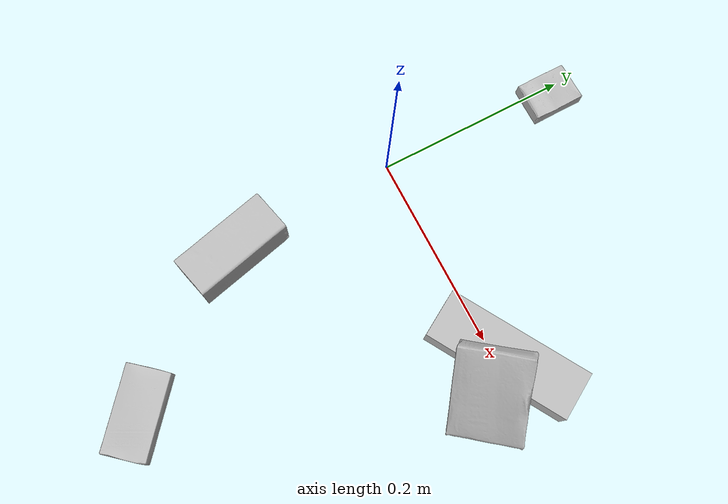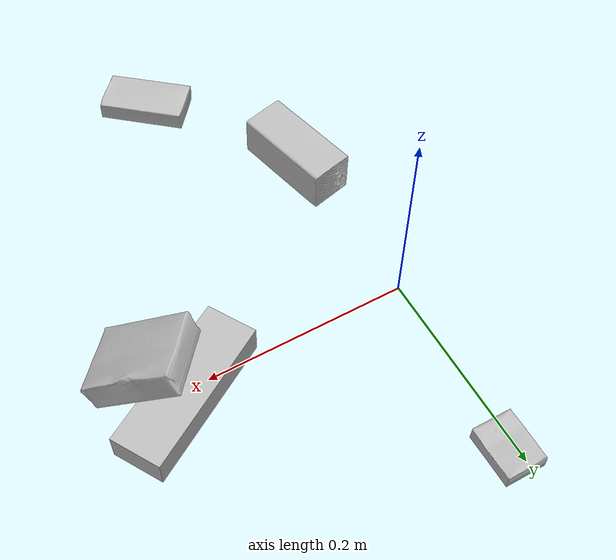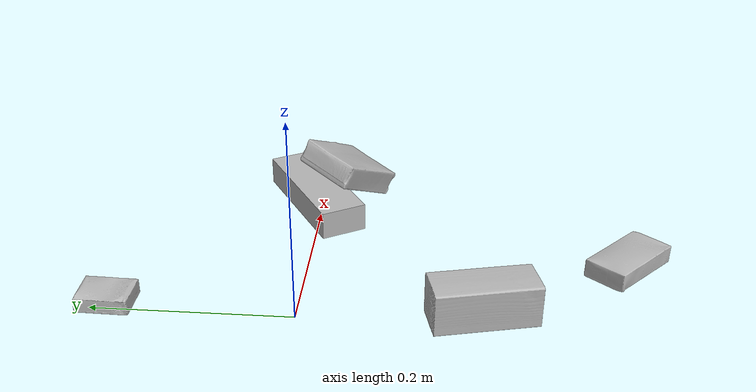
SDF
<sdf version="1.4">
  <world name="default">
    <light name="light1" type="point">
      <pose>0 0 1 0 0 0</pose>
      <diffuse>3 3 3 1</diffuse>
      <specular>3 3 3 1</specular>
    </light>
    <light name="light2" type="point">
      <pose>0 0.5 2 0 0 0</pose>
      <diffuse>1 1 1 1</diffuse>
      <specular>1 1 1 1</specular>
    </light>
    <light name="light3" type="point">
      <pose>0 0.5 2 0 0 0</pose>
      <diffuse>3 3 3 1</diffuse>
      <specular>3 3 3 1</specular>
    </light>
    <scene>
      <ambient>0.7 0.7 0.7</ambient>
    </scene>
    <model name="box1">
      <link name="link_box1">
        <collision name="default">
          <geometry>
            <mesh>
              <uri>model://sugar_box/collision_meshes/collision.obj</uri>
              <scale>0.5 0.5 0.5</scale>
            </mesh>
          </geometry>
          <surface>
            <friction>
              <ode>
                <mu>0.5</mu>
                <mu2>0.5</mu2>
              </ode>
            </friction>
          <contact>
        <ode>
            <max_vel>0</max_vel>
            <min_depth>0.0001</min_depth>
            <kp>1e8</kp>
        </ode>
    </contact></surface>
        </collision>
        <visual name="default">
          <geometry>
            <mesh>
              <uri>model://sugar_box/visual_meshes/visual.dae</uri>
              <scale>0.5 0.5 0.5</scale>
            </mesh>
          </geometry>
        </visual>
        <inertial>
          <mass>0.07249404489994049</mass>
          <pose>0.0005171863012947142 1.924554817378521e-05 -0.00018182402709499002 -0.00040462618385709627 0.0010506635220579009 0.0026153790218148127</pose>
          <inertia>
            <ixx>1.5100456e-05</ixx>
            <iyy>4.8807786e-05</iyy>
            <izz>5.842874e-05</izz>
            <ixy>0</ixy>
            <ixz>0</ixz>
            <iyz>0</iyz>
          </inertia>
        </inertial>
      </link>
      <pose>0.11030242592096329 -0.3258666396141052 0.011399302631616592 0.000775613953289829 -0.023433339482237952 2.4184817237787444</pose>
    </model>
    <model name="box2">
      <link name="link_box2">
        <collision name="default">
          <geometry>
            <mesh>
              <uri>model://cracker_box/collision_meshes/collision.obj</uri>
              <scale>0.25 0.25 0.25</scale>
            </mesh>
          </geometry>
          <surface>
            <friction>
              <ode>
                <mu>0.5</mu>
                <mu2>0.5</mu2>
              </ode>
            </friction>
          <contact>
        <ode>
            <max_vel>0</max_vel>
            <min_depth>0.0001</min_depth>
            <kp>1e8</kp>
        </ode>
    </contact></surface>
        </collision>
        <visual name="default">
          <geometry>
            <mesh>
              <uri>model://cracker_box/visual_meshes/visual.dae</uri>
              <scale>0.25 0.25 0.25</scale>
            </mesh>
          </geometry>
        </visual>
        <inertial>
          <mass>0.019660919904708862</mass>
          <pose>0.00023660410079173744 6.358561222441494e-05 -0.0004257383698131889 -0.00031620756431779875 -0.011106489600602764 0.0025467940703044144</pose>
          <inertia>
            <ixx>3.125538e-06</ixx>
            <iyy>5.1608768e-06</iyy>
            <izz>7.365045e-06</izz>
            <ixy>0</ixy>
            <ixz>0</ixz>
            <iyz>0</iyz>
          </inertia>
        </inertial>
      </link>
      <pose>0.009354876354336739 0.1844339221715927 0.009096026420593262 -0.014050497974622074 -0.005016573747951504 1.5676561553248445</pose>
    </model>
    <model name="box3">
      <link name="link_box3">
        <collision name="default">
          <geometry>
            <mesh>
              <uri>model://wood_block/collision_meshes/collision.obj</uri>
              <scale>0.5 0.5 0.5</scale>
            </mesh>
          </geometry>
          <surface>
            <friction>
              <ode>
                <mu>0.5</mu>
                <mu2>0.5</mu2>
              </ode>
            </friction>
          <contact>
        <ode>
            <max_vel>0</max_vel>
            <min_depth>0.0001</min_depth>
            <kp>1e8</kp>
        </ode>
    </contact></surface>
        </collision>
        <visual name="default">
          <geometry>
            <mesh>
              <uri>model://wood_block/visual_meshes/visual.dae</uri>
              <scale>0.5 0.5 0.5</scale>
            </mesh>
          </geometry>
        </visual>
        <inertial>
          <mass>0.22331082820892334</mass>
          <pose>-2.9066577553749084e-06 -0.000285404734313488 0.00013204292918089777 -0.0522110088927385 -0.005192696049127085 -0.006861379582621758</pose>
          <inertia>
            <ixx>7.470592e-05</ixx>
            <iyy>0.00023599603</iyy>
            <izz>0.0002351133</izz>
            <ixy>0</ixy>
            <ixz>0</ixz>
            <iyz>0</iyz>
          </inertia>
        </inertial>
      </link>
      <pose>0.010995619930326939 -0.17641915380954742 0.022629257291555405 -0.00520849102598366 0.0057187324237368 1.8073511659067243</pose>
    </model>
    <model name="box4">
      <link name="link_box4">
        <collision name="default">
          <geometry>
            <mesh>
              <uri>model://jenga/collision_meshes/collision.obj</uri>
              <scale>1.0 1.0 1.0</scale>
            </mesh>
          </geometry>
          <surface>
            <friction>
              <ode>
                <mu>0.5</mu>
                <mu2>0.5</mu2>
              </ode>
            </friction>
          <contact>
        <ode>
            <max_vel>0</max_vel>
            <min_depth>0.0001</min_depth>
            <kp>1e8</kp>
        </ode>
    </contact></surface>
        </collision>
        <visual name="default">
          <geometry>
            <mesh>
              <uri>model://jenga/visual_meshes/visual.dae</uri>
              <scale>1.0 1.0 1.0</scale>
            </mesh>
          </geometry>
        </visual>
        <inertial>
          <mass>0.1217927634716034</mass>
          <pose>-2.502855807051674e-07 -0.00010250010382151231 -4.0923401684267446e-05 0.0 -7.34215461761844e-07 0.0</pose>
          <inertia>
            <ixx>3.370301e-05</ixx>
            <iyy>0.00022837071</iyy>
            <izz>0.00024380515</izz>
            <ixy>0</ixy>
            <ixz>0</ixz>
            <iyz>0</iyz>
          </inertia>
        </inertial>
      </link>
      <pose>0.22373707592487335 0.007946479134261608 0.01500006765127182 6.9328132057411744e-06 1.5595346918780025e-08 0.5345208796865871</pose>
    </model>
    <model name="box5">
      <link name="link_box5">
        <collision name="default">
          <geometry>
            <mesh>
              <uri>model://gelatin_box/collision_meshes/collision.obj</uri>
              <scale>1.0 1.0 1.0</scale>
            </mesh>
          </geometry>
          <surface>
            <friction>
              <ode>
                <mu>0.5</mu>
                <mu2>0.5</mu2>
              </ode>
            </friction>
          <contact>
        <ode>
            <max_vel>0</max_vel>
            <min_depth>0.0001</min_depth>
            <kp>1e8</kp>
        </ode>
    </contact></surface>
        </collision>
        <visual name="default">
          <geometry>
            <mesh>
              <uri>model://gelatin_box/visual_meshes/visual.dae</uri>
              <scale>1.0 1.0 1.0</scale>
            </mesh>
          </geometry>
        </visual>
        <inertial>
          <mass>0.09479870647192001</mass>
          <pose>0.0004319618456065655 0.00011156871914863586 -0.0003640321083366871 -0.0010503720924044775 -0.0047558191559584585 0.01644055760930107</pose>
          <inertia>
            <ixx>6.6920154e-05</ixx>
            <iyy>4.780071e-05</iyy>
            <izz>0.00010186739</izz>
            <ixy>0</ixy>
            <ixz>0</ixz>
            <iyz>0</iyz>
          </inertia>
        </inertial>
      </link>
      <pose>0.24822407960891724 -0.02661367692053318 0.03775623440742493 0.45718036148510055 -0.17611258721435125 0.882348222677077</pose>
    </model>
  <physics type="ode">
      <max_contacts>50</max_contacts>
      <ode>
        <solver>
          <type>quick</type>
          <iters>75</iters>
        </solver>
        <constraints>
          <contact_max_correcting_vel>0</contact_max_correcting_vel>
          <contact_surface_layer>0</contact_surface_layer>
        </constraints>
      </ode>
    </physics></world>
</sdf>
